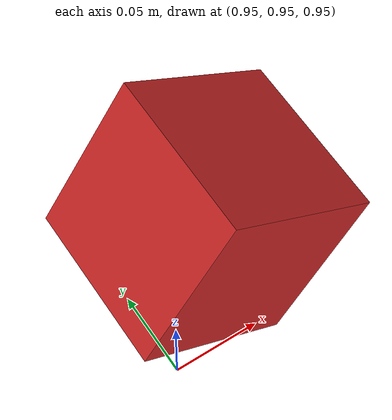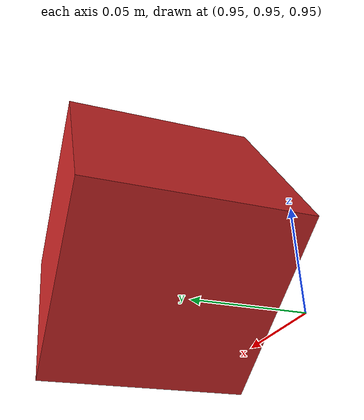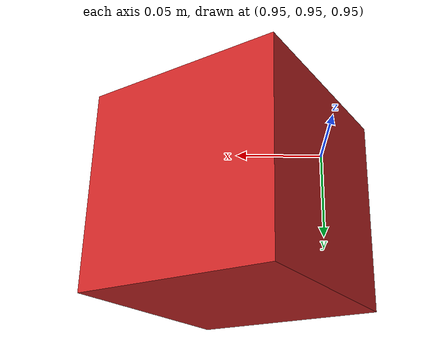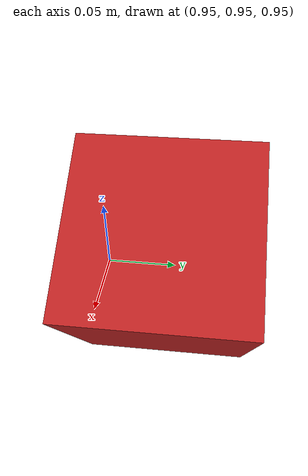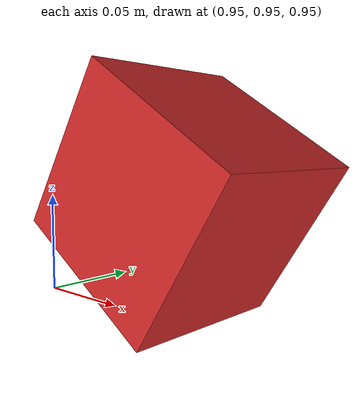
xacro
<?xml version='1.0'?>
<robot xmlns:xacro="http://www.ros.org/wiki/xacro" name="camera">

  <!-- Camera -->
  <link name="camera_link">

    <collision>
      <origin xyz="1 1 1" rpy="0 -1 0"/>
      <geometry>
        <box size=".1 .1 .1"/>
      </geometry>
    </collision>

    <visual>
      <origin xyz="1 1 1" rpy="0 -1 0"/>
      <geometry>
        <box size=".1 .1 .1"/>
      </geometry>
      <material name="red"/>
    </visual>

    <inertial>
      <mass value="1e-5" />
      <origin xyz="1 1 1" rpy="0 -1 0"/>
      <inertia ixx="1e-6" ixy="0" ixz="0" iyy="1e-6" iyz="0" izz="1e-6" />
    </inertial>

  </link>

  <!-- SENSOR -->
  <gazebo reference="camera_link">
    <sensor type="depth" name="openni_camera_camera">
      <always_on>1</always_on>
      <visualize>true</visualize>
      <camera>
        <horizontal_fov>1.047</horizontal_fov>
        <image>
          <width>640</width>
          <height>480</height>
          <format>R8G8B8</format>
        </image>
        <depth_camera>
        </depth_camera>
        <clip>
          <near>0.1</near>
          <far>100</far>
        </clip>
      </camera>

      <plugin name="camera_plugin" filename="libgazebo_ros_openni_kinect.so">
        <baseline>0.2</baseline>
        <alwaysOn>true</alwaysOn>
        <updateRate>0.0</updateRate>
        <cameraName>camera_ir</cameraName>
        <imageTopicName>/camera/color/image_raw</imageTopicName>
        <cameraInfoTopicName>/camera/color/camera_info</cameraInfoTopicName>
        <depthImageTopicName>/camera/depth/image_raw</depthImageTopicName>
        <depthImageCameraInfoTopicName>/camera/depth/camera_info</depthImageCameraInfoTopicName>
        <pointCloudTopicName>/camera/depth/points</pointCloudTopicName>
        <frameName>openni_camera_link</frameName>
        <pointCloudCutoff>0.5</pointCloudCutoff>
        <pointCloudCutoffMax>3.0</pointCloudCutoffMax>
        <distortionK1>0</distortionK1>
        <distortionK2>0</distortionK2>
        <distortionK3>0</distortionK3>
        <distortionT1>0</distortionT1>
        <distortionT2>0</distortionT2>
        <CxPrime>0</CxPrime>
        <Cx>0</Cx>
        <Cy>0</Cy>
        <focalLength>0</focalLength>
        <hackBaseline>0</hackBaseline>
      </plugin>
    </sensor>
  </gazebo>

</robot>
